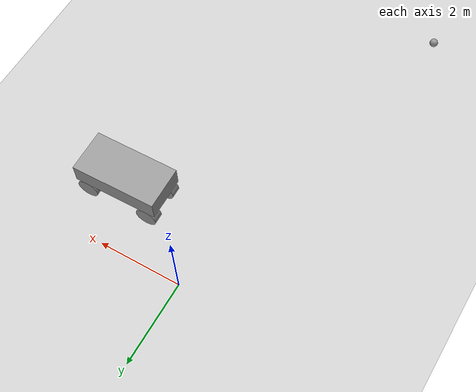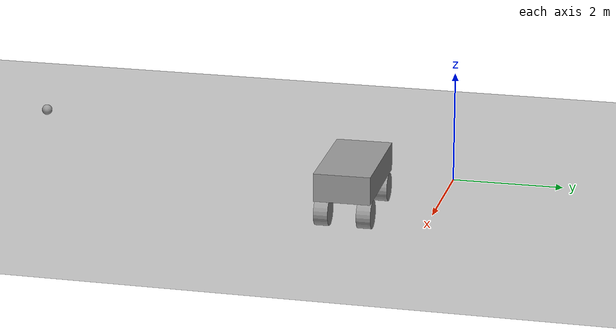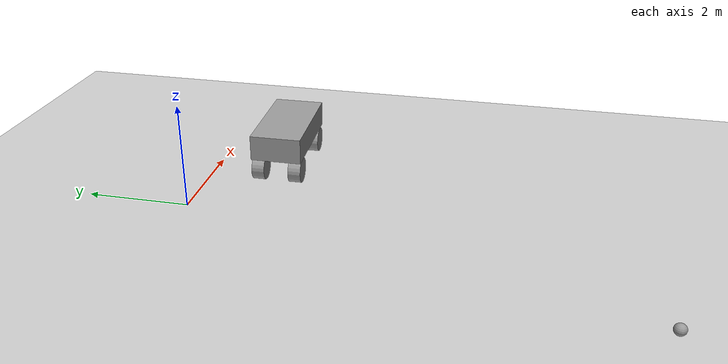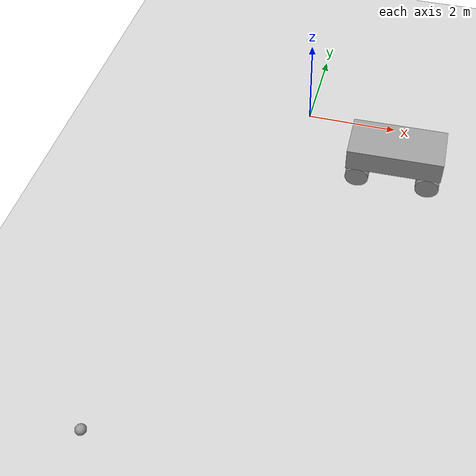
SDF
<sdf version="1.6">
 <world name="default">
  <model name="ground_plane">
   <static>1</static>
   <link name="link">
    <collision name="collision">
     <geometry><plane><normal>0 0 1</normal><size>100 100</size></plane></geometry>
     <surface><friction><ode><mu>100</mu><mu2>50</mu2></ode></friction></surface>
    </collision>
    <visual name="visual">
     <cast_shadows>0</cast_shadows>
     <geometry><plane><normal>0 0 1</normal><size>100 100</size></plane></geometry>
     <material>
      <script><uri>file://media/materials/scripts/gazebo.material</uri><name>Gazebo/Grey</name></script>
     </material>
    </visual>
   </link>
  </model>
  <model name="robot">
   <link name="link_0">
    <pose>0.073816 0.570981 0 0 -0 0</pose>
    <inertial>
     <mass>1</mass>
     <inertia>
      <ixx>0.166667</ixx>
      <ixy>0</ixy>
      <ixz>0</ixz>
      <iyy>0.166667</iyy>
      <iyz>0</iyz>
      <izz>0.166667</izz>
     </inertia>
    </inertial>
    <visual name="visual">
     <geometry><box><size>2 1 0.5</size></box></geometry>
     <material>
      <lighting>1</lighting>
      <script><uri>file://media/materials/scripts/gazebo.material</uri><name>Gazebo/Grey</name></script>
      <ambient>0.3 0.3 0.3 1</ambient>
      <diffuse>0.7 0.7 0.7 1</diffuse>
      <specular>0.01 0.01 0.01 1</specular>
      <emissive>0 0 0 1</emissive>
      <shader type="vertex"><normal_map>__default__</normal_map></shader>
     </material>
    </visual>
    <collision name="collision">
     <geometry><box><size>2 1 0.5</size></box></geometry>
     <surface>
      <friction>
       <ode><mu>1</mu><mu2>1</mu2><fdir1>0 0 0</fdir1><slip1>0</slip1><slip2>0</slip2></ode>
       <torsional>
        <coefficient>1</coefficient>
        <patch_radius>0</patch_radius>
        <surface_radius>0</surface_radius>
        <use_patch_radius>1</use_patch_radius>
        <ode><slip>0</slip></ode>
       </torsional>
      </friction>
      <bounce><restitution_coefficient>0</restitution_coefficient><threshold>1e+06</threshold></bounce>
      <contact>
       <collide_without_contact>0</collide_without_contact>
       <collide_without_contact_bitmask>1</collide_without_contact_bitmask>
       <collide_bitmask>1</collide_bitmask>
       <ode>
        <soft_cfm>0</soft_cfm>
        <soft_erp>0.2</soft_erp>
        <kp>1e+13</kp>
        <kd>1</kd>
        <max_vel>0.01</max_vel>
        <min_depth>0</min_depth>
       </ode>
       <bullet>
        <split_impulse>1</split_impulse>
        <split_impulse_penetration_threshold>-0.01</split_impulse_penetration_threshold>
        <soft_cfm>0</soft_cfm>
        <soft_erp>0.2</soft_erp>
        <kp>1e+13</kp>
        <kd>1</kd>
       </bullet>
      </contact>
     </surface>
    </collision>
   </link>
   <link name="link_1">
    <pose>-0.676184 0.211005 -0.500013 1.5707 -0 0</pose>
    <inertial>
     <mass>1</mass>
     <inertia><ixx>0.145833</ixx><ixy>0</ixy><ixz>0</ixz><iyy>0.145833</iyy><iyz>0</iyz><izz>0.125</izz></inertia>
    </inertial>
    <visual name="visual">
     <geometry><cylinder><radius>0.25</radius><length>0.25</length></cylinder></geometry>
     <material>
      <lighting>1</lighting>
      <script><uri>file://media/materials/scripts/gazebo.material</uri><name>Gazebo/Grey</name></script>
      <ambient>0.3 0.3 0.3 1</ambient>
      <diffuse>0.7 0.7 0.7 1</diffuse>
      <specular>0.01 0.01 0.01 1</specular>
      <emissive>0 0 0 1</emissive>
      <shader type="vertex"><normal_map>__default__</normal_map></shader>
     </material>
    </visual>
    <collision name="collision">
     <geometry><cylinder><radius>0.25</radius><length>0.25</length></cylinder></geometry>
     <surface>
      <friction>
       <ode><mu>1</mu><mu2>1</mu2><fdir1>0 0 0</fdir1><slip1>0</slip1><slip2>0</slip2></ode>
       <torsional>
        <coefficient>1</coefficient>
        <patch_radius>0</patch_radius>
        <surface_radius>0</surface_radius>
        <use_patch_radius>1</use_patch_radius>
        <ode><slip>0</slip></ode>
       </torsional>
      </friction>
      <bounce><restitution_coefficient>0</restitution_coefficient><threshold>1e+06</threshold></bounce>
      <contact>
       <collide_without_contact>0</collide_without_contact>
       <collide_without_contact_bitmask>1</collide_without_contact_bitmask>
       <collide_bitmask>1</collide_bitmask>
       <ode>
        <soft_cfm>0</soft_cfm>
        <soft_erp>0.2</soft_erp>
        <kp>1e+13</kp>
        <kd>1</kd>
        <max_vel>0.01</max_vel>
        <min_depth>0</min_depth>
       </ode>
       <bullet>
        <split_impulse>1</split_impulse>
        <split_impulse_penetration_threshold>-0.01</split_impulse_penetration_threshold>
        <soft_cfm>0</soft_cfm>
        <soft_erp>0.2</soft_erp>
        <kp>1e+13</kp>
        <kd>1</kd>
       </bullet>
      </contact>
     </surface>
    </collision>
   </link>
   <link name="link_1_clone">
    <pose>-0.676184 0.945957 -0.500013 1.5707 -0 0</pose>
    <inertial>
     <mass>1</mass>
     <inertia><ixx>0.145833</ixx><ixy>0</ixy><ixz>0</ixz><iyy>0.145833</iyy><iyz>0</iyz><izz>0.125</izz></inertia>
    </inertial>
    <visual name="visual">
     <geometry><cylinder><radius>0.25</radius><length>0.25</length></cylinder></geometry>
     <material>
      <lighting>1</lighting>
      <script><uri>file://media/materials/scripts/gazebo.material</uri><name>Gazebo/Grey</name></script>
      <ambient>0.3 0.3 0.3 1</ambient>
      <diffuse>0.7 0.7 0.7 1</diffuse>
      <specular>0.01 0.01 0.01 1</specular>
      <emissive>0 0 0 1</emissive>
      <shader type="vertex"><normal_map>__default__</normal_map></shader>
     </material>
    </visual>
    <collision name="collision">
     <geometry><cylinder><radius>0.25</radius><length>0.25</length></cylinder></geometry>
     <surface>
      <friction>
       <ode><mu>1</mu><mu2>1</mu2><fdir1>0 0 0</fdir1><slip1>0</slip1><slip2>0</slip2></ode>
       <torsional>
        <coefficient>1</coefficient>
        <patch_radius>0</patch_radius>
        <surface_radius>0</surface_radius>
        <use_patch_radius>1</use_patch_radius>
        <ode><slip>0</slip></ode>
       </torsional>
      </friction>
      <bounce><restitution_coefficient>0</restitution_coefficient><threshold>1e+06</threshold></bounce>
      <contact>
       <collide_without_contact>0</collide_without_contact>
       <collide_without_contact_bitmask>1</collide_without_contact_bitmask>
       <collide_bitmask>1</collide_bitmask>
       <ode>
        <soft_cfm>0</soft_cfm>
        <soft_erp>0.2</soft_erp>
        <kp>1e+13</kp>
        <kd>1</kd>
        <max_vel>0.01</max_vel>
        <min_depth>0</min_depth>
       </ode>
       <bullet>
        <split_impulse>1</split_impulse>
        <split_impulse_penetration_threshold>-0.01</split_impulse_penetration_threshold>
        <soft_cfm>0</soft_cfm>
        <soft_erp>0.2</soft_erp>
        <kp>1e+13</kp>
        <kd>1</kd>
       </bullet>
      </contact>
     </surface>
    </collision>
   </link>
   <link name="link_1_clone_0">
    <pose>0.823816 0.945957 -0.500012 1.5707 -0 0</pose>
    <inertial>
     <mass>1</mass>
     <inertia><ixx>0.145833</ixx><ixy>0</ixy><ixz>0</ixz><iyy>0.145833</iyy><iyz>0</iyz><izz>0.125</izz></inertia>
    </inertial>
    <visual name="visual">
     <geometry><cylinder><radius>0.25</radius><length>0.25</length></cylinder></geometry>
     <material>
      <lighting>1</lighting>
      <script><uri>file://media/materials/scripts/gazebo.material</uri><name>Gazebo/Grey</name></script>
      <ambient>0.3 0.3 0.3 1</ambient>
      <diffuse>0.7 0.7 0.7 1</diffuse>
      <specular>0.01 0.01 0.01 1</specular>
      <emissive>0 0 0 1</emissive>
      <shader type="vertex"><normal_map>__default__</normal_map></shader>
     </material>
    </visual>
    <collision name="collision">
     <geometry><cylinder><radius>0.25</radius><length>0.25</length></cylinder></geometry>
     <surface>
      <friction>
       <ode><mu>1</mu><mu2>1</mu2><fdir1>0 0 0</fdir1><slip1>0</slip1><slip2>0</slip2></ode>
       <torsional>
        <coefficient>1</coefficient>
        <patch_radius>0</patch_radius>
        <surface_radius>0</surface_radius>
        <use_patch_radius>1</use_patch_radius>
        <ode><slip>0</slip></ode>
       </torsional>
      </friction>
      <bounce><restitution_coefficient>0</restitution_coefficient><threshold>1e+06</threshold></bounce>
      <contact>
       <collide_without_contact>0</collide_without_contact>
       <collide_without_contact_bitmask>1</collide_without_contact_bitmask>
       <collide_bitmask>1</collide_bitmask>
       <ode>
        <soft_cfm>0</soft_cfm>
        <soft_erp>0.2</soft_erp>
        <kp>1e+13</kp>
        <kd>1</kd>
        <max_vel>0.01</max_vel>
        <min_depth>0</min_depth>
       </ode>
       <bullet>
        <split_impulse>1</split_impulse>
        <split_impulse_penetration_threshold>-0.01</split_impulse_penetration_threshold>
        <soft_cfm>0</soft_cfm>
        <soft_erp>0.2</soft_erp>
        <kp>1e+13</kp>
        <kd>1</kd>
       </bullet>
      </contact>
     </surface>
    </collision>
   </link>
   <link name="link_1_clone_1">
    <pose>0.823816 0.196005 -0.500012 1.5707 -0 0</pose>
    <inertial>
     <mass>1</mass>
     <inertia><ixx>0.145833</ixx><ixy>0</ixy><ixz>0</ixz><iyy>0.145833</iyy><iyz>0</iyz><izz>0.125</izz></inertia>
    </inertial>
    <visual name="visual">
     <geometry><cylinder><radius>0.25</radius><length>0.25</length></cylinder></geometry>
     <material>
      <lighting>1</lighting>
      <script><uri>file://media/materials/scripts/gazebo.material</uri><name>Gazebo/Grey</name></script>
      <ambient>0.3 0.3 0.3 1</ambient>
      <diffuse>0.7 0.7 0.7 1</diffuse>
      <specular>0.01 0.01 0.01 1</specular>
      <emissive>0 0 0 1</emissive>
      <shader type="vertex"><normal_map>__default__</normal_map></shader>
     </material>
    </visual>
    <collision name="collision">
     <geometry><cylinder><radius>0.25</radius><length>0.25</length></cylinder></geometry>
     <surface>
      <friction>
       <ode><mu>1</mu><mu2>1</mu2><fdir1>0 0 0</fdir1><slip1>0</slip1><slip2>0</slip2></ode>
       <torsional>
        <coefficient>1</coefficient>
        <patch_radius>0</patch_radius>
        <surface_radius>0</surface_radius>
        <use_patch_radius>1</use_patch_radius>
        <ode><slip>0</slip></ode>
       </torsional>
      </friction>
      <bounce><restitution_coefficient>0</restitution_coefficient><threshold>1e+06</threshold></bounce>
      <contact>
       <collide_without_contact>0</collide_without_contact>
       <collide_without_contact_bitmask>1</collide_without_contact_bitmask>
       <collide_bitmask>1</collide_bitmask>
       <ode>
        <soft_cfm>0</soft_cfm>
        <soft_erp>0.2</soft_erp>
        <kp>1e+13</kp>
        <kd>1</kd>
        <max_vel>0.01</max_vel>
        <min_depth>0</min_depth>
       </ode>
       <bullet>
        <split_impulse>1</split_impulse>
        <split_impulse_penetration_threshold>-0.01</split_impulse_penetration_threshold>
        <soft_cfm>0</soft_cfm>
        <soft_erp>0.2</soft_erp>
        <kp>1e+13</kp>
        <kd>1</kd>
       </bullet>
      </contact>
     </surface>
    </collision>
   </link>
   <joint name="link_0_JOINT_0" type="revolute">
    <parent>link_0</parent>
    <child>link_1</child>
    <axis>
     <xyz>0 0 1</xyz>
     <use_parent_model_frame>0</use_parent_model_frame>
     <limit>
      <lower>-1.79769e+308</lower>
      <upper>1.79769e+308</upper>
      <effort>-1</effort>
      <velocity>-1</velocity>
     </limit>
     <dynamics>
      <spring_reference>0</spring_reference>
      <spring_stiffness>0</spring_stiffness>
      <damping>0</damping>
     </dynamics>
    </axis>
    <physics>
     <ode><limit><cfm>0</cfm><erp>0.2</erp></limit><suspension><cfm>0</cfm><erp>0.2</erp></suspension></ode>
    </physics>
   </joint>
   <joint name="link_0_JOINT_1" type="revolute">
    <parent>link_0</parent>
    <child>link_1_clone</child>
    <axis>
     <xyz>0 0 -1</xyz>
     <use_parent_model_frame>0</use_parent_model_frame>
     <limit>
      <lower>-1.79769e+308</lower>
      <upper>1.79769e+308</upper>
      <effort>-1</effort>
      <velocity>-1</velocity>
     </limit>
     <dynamics>
      <spring_reference>0</spring_reference>
      <spring_stiffness>0</spring_stiffness>
      <damping>0</damping>
     </dynamics>
    </axis>
    <physics>
     <ode><limit><cfm>0</cfm><erp>0.2</erp></limit><suspension><cfm>0</cfm><erp>0.2</erp></suspension></ode>
    </physics>
   </joint>
   <joint name="link_0_JOINT_2" type="revolute2">
    <parent>link_0</parent>
    <child>link_1_clone_1</child>
    <axis>
     <xyz>0 0 1</xyz>
     <use_parent_model_frame>0</use_parent_model_frame>
     <limit>
      <lower>-1.79769e+308</lower>
      <upper>1.79769e+308</upper>
      <effort>-1</effort>
      <velocity>-1</velocity>
     </limit>
     <dynamics>
      <spring_reference>0</spring_reference>
      <spring_stiffness>0</spring_stiffness>
      <damping>0</damping>
     </dynamics>
    </axis>
    <axis2>
     <xyz>0 1 0</xyz>
     <use_parent_model_frame>0</use_parent_model_frame>
     <dynamics>
      <spring_reference>0</spring_reference>
      <spring_stiffness>0</spring_stiffness>
      <damping>0</damping>
     </dynamics>
     <limit>
      <lower>-1.79769e+308</lower>
      <upper>1.79769e+308</upper>
      <effort>-1</effort>
      <velocity>-1</velocity>
     </limit>
    </axis2>
    <physics>
     <ode><limit><cfm>0</cfm><erp>0.2</erp></limit><suspension><cfm>0</cfm><erp>0.2</erp></suspension></ode>
    </physics>
   </joint>
   <joint name="link_0_JOINT_3" type="revolute2">
    <parent>link_0</parent>
    <child>link_1_clone_0</child>
    <axis>
     <xyz>-0 -0 -1</xyz>
     <use_parent_model_frame>0</use_parent_model_frame>
     <limit>
      <lower>-1.79769e+308</lower>
      <upper>1.79769e+308</upper>
      <effort>-1</effort>
      <velocity>-1</velocity>
     </limit>
     <dynamics>
      <spring_reference>0</spring_reference>
      <spring_stiffness>0</spring_stiffness>
      <damping>0</damping>
     </dynamics>
    </axis>
    <axis2>
     <xyz>0 1 0</xyz>
     <use_parent_model_frame>0</use_parent_model_frame>
     <dynamics>
      <spring_reference>0</spring_reference>
      <spring_stiffness>0</spring_stiffness>
      <damping>0</damping>
     </dynamics>
     <limit>
      <lower>-1.79769e+308</lower>
      <upper>1.79769e+308</upper>
      <effort>-1</effort>
      <velocity>-1</velocity>
     </limit>
    </axis2>
    <physics>
     <ode><limit><cfm>0</cfm><erp>0.2</erp></limit><suspension><cfm>0</cfm><erp>0.2</erp></suspension></ode>
    </physics>
   </joint>
   <static>0</static>
   <pose>2.0996 -1.96186 0.750019 0 8e-06 0.019636</pose>
  </model>
  <model name="my_ball">
   <link name="link_0">
    <inertial>
     <mass>1</mass>
     <inertia><ixx>0.1</ixx><ixy>0</ixy><ixz>0</ixz><iyy>0.1</iyy><iyz>0</iyz><izz>0.1</izz></inertia>
    </inertial>
    <visual name="visual">
     <geometry><sphere><radius>0.1</radius></sphere></geometry>
     <material>
      <lighting>1</lighting>
      <script><uri>file://media/materials/scripts/gazebo.material</uri><name>Gazebo/Grey</name></script>
      <ambient>1 1 1 1</ambient>
      <diffuse>1 1 1 1</diffuse>
      <specular>1 1 1 1</specular>
      <emissive>1 1 1 1</emissive>
      <shader type="vertex"><normal_map>__default__</normal_map></shader>
     </material>
    </visual>
    <collision name="collision">
     <geometry><sphere><radius>0.1</radius></sphere></geometry>
     <surface>
      <friction>
       <ode><mu>1</mu><mu2>1</mu2><fdir1>0 0 0</fdir1><slip1>0</slip1><slip2>0</slip2></ode>
       <torsional>
        <coefficient>1</coefficient>
        <patch_radius>0</patch_radius>
        <surface_radius>0</surface_radius>
        <use_patch_radius>1</use_patch_radius>
        <ode><slip>0</slip></ode>
       </torsional>
      </friction>
      <bounce><restitution_coefficient>0</restitution_coefficient><threshold>1e+06</threshold></bounce>
      <contact>
       <collide_without_contact>0</collide_without_contact>
       <collide_without_contact_bitmask>1</collide_without_contact_bitmask>
       <collide_bitmask>1</collide_bitmask>
       <ode>
        <soft_cfm>0</soft_cfm>
        <soft_erp>0.2</soft_erp>
        <kp>1e+13</kp>
        <kd>1</kd>
        <max_vel>0.01</max_vel>
        <min_depth>0</min_depth>
       </ode>
       <bullet>
        <split_impulse>1</split_impulse>
        <split_impulse_penetration_threshold>-0.01</split_impulse_penetration_threshold>
        <soft_cfm>0</soft_cfm>
        <soft_erp>0.2</soft_erp>
        <kp>1e+13</kp>
        <kd>1</kd>
       </bullet>
      </contact>
     </surface>
    </collision>
   </link>
   <static>0</static>
   <pose>-2.03775 -8.44748 0.1 0 -0 0</pose>
  </model>
 </world>
</sdf>
